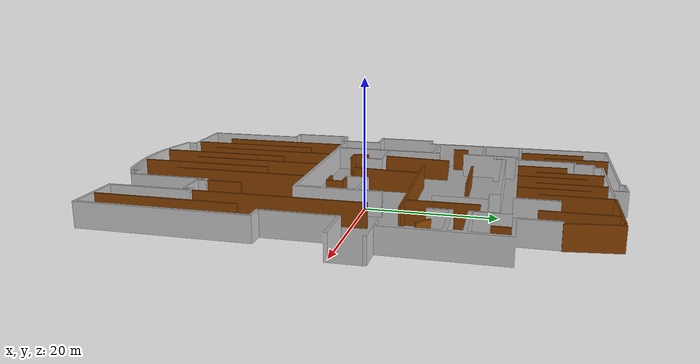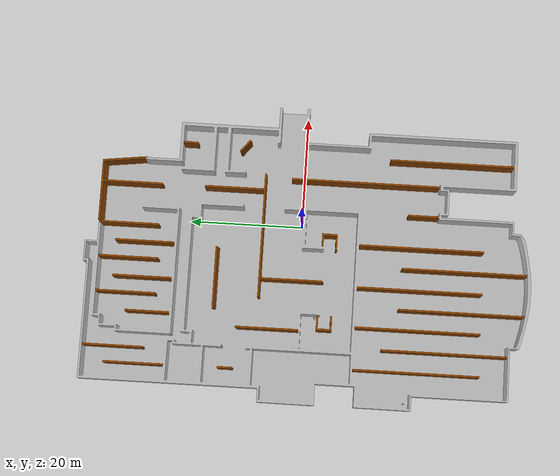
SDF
<sdf version="1.5">
 <world name="default">
  <model name="invisible_ground_plane">
   <static>true</static>
   <link name="link">
    <collision name="collision">
     <geometry><plane><normal>0 0 1</normal><size>5000 5000</size></plane></geometry>
     <surface><friction><ode><mu>1</mu><mu2>1</mu2></ode></friction></surface>
    </collision>
   </link>
  </model>
  <include><uri>model://sun</uri></include>
  <light type="directional" name="my_light0">
   <pose>0 0 30 0 0 0</pose>
   <diffuse>0.1 0.1 0.1 1</diffuse>
   <specular>0.1 0.1 0.1 1</specular>
   <direction>0.1 0.1 -0.9</direction>
   <attenuation>
    <range>20</range>
    <linear>0.01</linear>
    <constant>0.5</constant>
    <quadratic>0.001</quadratic>
   </attenuation>
  </light>
  <light type="directional" name="VL1">
   <pose>-30.444600 -19.568300 400 0 0 0</pose>
   <diffuse>0.8 0.8 0.8 1</diffuse>
   <specular>0.1 0.1 0.1 1</specular>
   <direction>0.1 0.1 -0.9</direction>
   <attenuation>
    <range>500</range>
    <linear>0.01</linear>
    <constant>0.01</constant>
    <quadratic>0.001</quadratic>
   </attenuation>
  </light>
  <light type="directional" name="VL2">
   <pose>-7.860472  37.781033 400 0 0 0</pose>
   <diffuse>0.8 0.8 0.8 1</diffuse>
   <specular>0.1 0.1 0.1 1</specular>
   <direction>0.1 0.1 -0.9</direction>
   <attenuation>
    <range>500</range>
    <linear>0.01</linear>
    <constant>0.01</constant>
    <quadratic>0.001</quadratic>
   </attenuation>
  </light>
  <light type="directional" name="VL3">
   <pose>14.589423  21.634830 400 0 0 0</pose>
   <diffuse>0.8 0.8 0.8 1</diffuse>
   <specular>0.1 0.1 0.1 1</specular>
   <direction>0.1 0.1 -0.9</direction>
   <attenuation>
    <range>500</range>
    <linear>0.01</linear>
    <constant>0.01</constant>
    <quadratic>0.001</quadratic>
   </attenuation>
  </light>
  <light type="directional" name="VL4">
   <pose>-16.201992  -3.154527 400 0 0 0</pose>
   <diffuse>0.8 0.8 0.8 1</diffuse>
   <specular>0.1 0.1 0.1 1</specular>
   <direction>0.1 0.1 -0.9</direction>
   <attenuation>
    <range>500</range>
    <linear>0.01</linear>
    <constant>0.01</constant>
    <quadratic>0.001</quadratic>
   </attenuation>
  </light>
  <include><pose>0 0 -0.1 0 0 0</pose><static>1</static><uri>model://RC2016VRL_event1</uri></include>
  <include>
   <name>V1</name>
   <static>1</static>
   <pose>-30.444600 -19.568300  0.0  1.57 0  1.57</pose>
   <uri>model://victimWoman</uri>
  </include>
  <include>
   <name>V2</name>
   <static>1</static>
   <pose>-7.860472  37.781033  0.0  1.57 0  0</pose>
   <uri>model://victimWoman</uri>
  </include>
  <include>
   <name>V3</name>
   <static>1</static>
   <pose>14.589423  21.634830  0.0  1.57 0  0</pose>
   <uri>model://victimWoman</uri>
  </include>
  <include>
   <name>V4</name>
   <static>1</static>
   <pose>-16.201992  -3.154527  0.0  1.57 0  3.14</pose>
   <uri>model://victimWoman</uri>
  </include>
 </world>
</sdf>

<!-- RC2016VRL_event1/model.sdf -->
<sdf version="1.5">
  <model name="RC2016VRL_event1">
    <static>true</static>
    <pose>0 0 0 0 0 0</pose>
    <link name="link">
      <collision name="collision">
        <geometry>
          <mesh>
            <uri>model://RC2016VRL_event1/event1.dae</uri>
            <scale>1.32 1.32 0.66</scale>
          </mesh>
        </geometry>
      </collision>
      <visual name="visual">
        <geometry>
          <mesh>
            <uri>model://RC2016VRL_event1/event1.dae</uri>
            <scale>1.32 1.32 0.66</scale>
          </mesh>
        </geometry>
        <cast_shadows>false</cast_shadows>
      </visual>
    </link>
  </model>
</sdf>

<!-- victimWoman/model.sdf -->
<sdf version='1.5'>
  <model name='victimWoman'>
    <static>true</static>
    <pose frame=''>2 -3 0 1.57 0 0</pose>
    <link name='defaultModel_0::custom_0'>
      <pose frame=''>0 0 0 0 0 0</pose>
      <gravity>1</gravity>
      <self_collide>0</self_collide>
      <kinematic>0</kinematic>
      <visual name='custom_0_visual'>
        <pose frame=''>0 0 0 0 -0 0</pose>
        <geometry>
          <mesh>
            <uri>model://victimWoman/girl-brunette-dae/girl-brunette.dae</uri>
            <scale>1 1 1</scale>
          </mesh>
        </geometry>
      </visual>
      <collision name='custom_0_collision'>
        <geometry>
          <mesh>
            <uri>model://victimWoman/girl-brunette-dae/girl-brunette.dae</uri>
            <scale>1 1 1</scale>
          </mesh>
        </geometry>
        <pose frame=''>0 0 0 0 0 0</pose>
      </collision>

    </link>

    <allow_auto_disable>1</allow_auto_disable>
  </model>
</sdf>
